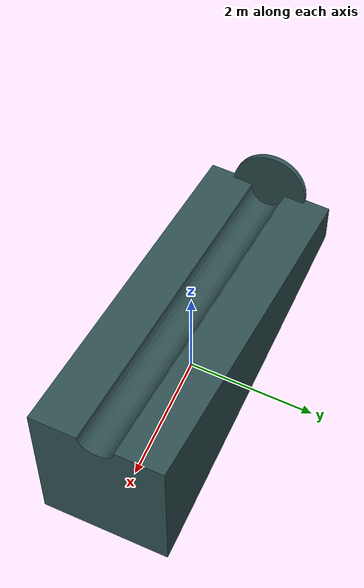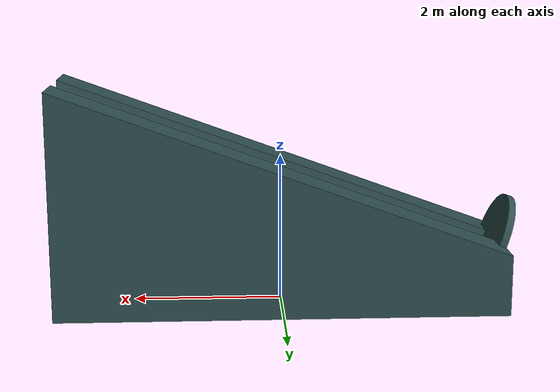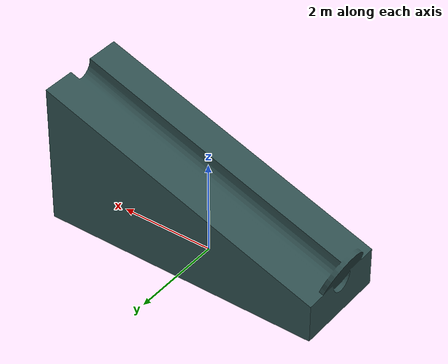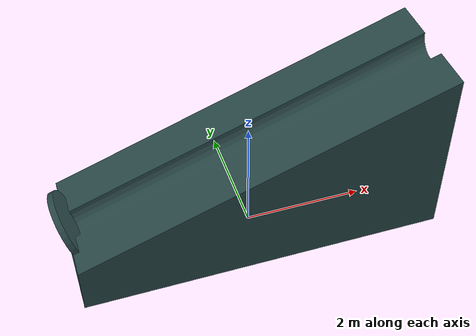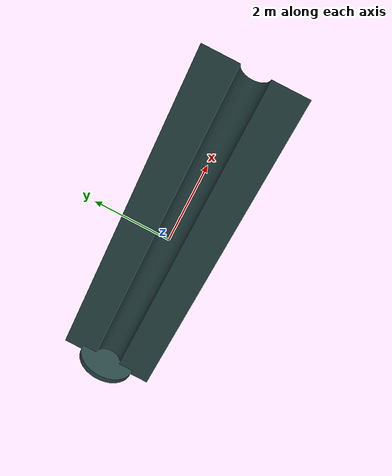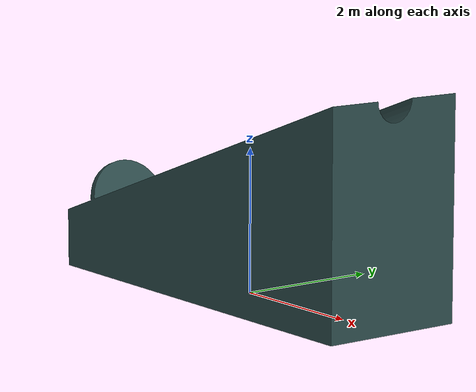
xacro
<?xml version="1.0" ?>
<robot name="20deg_launcher" xmlns:xacro="http://www.ros.org/wiki/xacro">

<xacro:include filename="$(find exocet_20deg_launcher)/urdf/materials.xacro" />
<xacro:include filename="$(find exocet_20deg_launcher)/urdf/20deg_launcher.gazebo" />
<link name="base_link">
  <inertial>
    <origin xyz="0.581064554209247 -2.1485566505985686e-16 1.032824471007952" rpy="0 0 0"/>
    <mass value="174217.96585404052"/>
    <inertia ixx="142419.847107" iyy="549705.903859" izz="526964.183043" ixy="-0.0" iyz="-0.0" ixz="-83436.377751"/>
  </inertial>
  <visual>
    <origin xyz="0 0 0" rpy="0 0 0"/>
    <geometry>
      <mesh filename="package://exocet_20deg_launcher/meshes/base_link.stl" scale="0.001 0.001 0.001"/>
    </geometry>
    <material name="darkgrey"/>
  </visual>
  <collision>
    <origin xyz="0 0 0" rpy="0 0 0"/>
    <geometry>
      <mesh filename="package://exocet_20deg_launcher/meshes/base_link.stl" scale="0.001 0.001 0.001"/>
    </geometry>
  </collision>
</link>

</robot>

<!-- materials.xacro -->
<robot name="20deg_launcher" xmlns:xacro="http://www.ros.org/wiki/xacro" >

  <material name="grey">
    <color rgba="0.2 0.2 0.2 1.0"/>
  </material>

  <material name="darkgrey">
    <color rgba="${47/256} ${79/256} ${79/256} 1.000"/>
  </material>

  <material name="silver">
    <color rgba="0.700 0.700 0.700 1.000"/>
  </material>

  <material name="white">
    <color rgba="1 1 1 1" />
  </material>

  <material name="orange">
    <color rgba="1 0.3 0.1 1"/>
  </material>

  <material name="blue">
    <color rgba="0.2 0.2 1 1"/>
  </material>

  <material name="red">
    <color rgba="0.8 0 0 1"/>
  </material>

  <material name="green">
    <color rgba="0.0 1 0.0 1"/>
  </material>

  <material name="black">
    <color rgba="0 0 0 1"/>
  </material>
</robot>

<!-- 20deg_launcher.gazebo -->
<robot name="20deg_launcher" xmlns:xacro="http://www.ros.org/wiki/xacro" >

<xacro:property name="body_color" value="Gazebo/DarkGray" />

<gazebo reference="base_link">
  <material>${body_color}</material>
  <mu1>0.2</mu1>
  <mu2>0.2</mu2>
  <selfCollide>true</selfCollide>
  <gravity>true</gravity>
</gazebo>

</robot>
